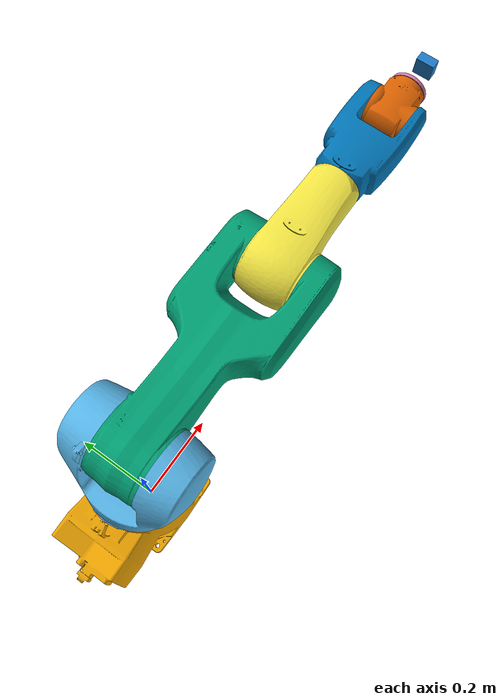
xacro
<?xml version="1.0"?>
<robot name="kr6_d405_workcell" xmlns:xacro="http://www.ros.org/wiki/xacro">
  <xacro:include filename="$(find kuka_kr6_support)/urdf/kr6r900_2_macro.xacro"/>
  <xacro:kuka_kr6r900_2 prefix=""/>

  <material name="d405_blue">
    <color rgba="0.12 0.48 0.78 1.0"/>
  </material>

  <joint name="d405_joint" type="fixed">
    <parent link="tool0"/>
    <child link="d405_link"/>
    <origin xyz="0 0 0.06" rpy="0 0 0"/>
  </joint>
  <link name="d405_link">
    <visual>
      <geometry><box size="0.042 0.042 0.023"/></geometry>
      <material name="d405_blue"/>
    </visual>
    <collision>
      <geometry><box size="0.042 0.042 0.023"/></geometry>
    </collision>
    <inertial>
      <mass value="0.075"/>
      <inertia ixx="0.00002" ixy="0" ixz="0" iyy="0.00002" iyz="0" izz="0.00002"/>
    </inertial>
  </link>

  <link name="d405_color_optical_frame"/>
  <joint name="d405_optical_joint" type="fixed">
    <parent link="d405_link"/>
    <child link="d405_color_optical_frame"/>
    <origin xyz="0 0 0.02" rpy="-1.5708 0 -1.5708"/>
  </joint>

  <ros2_control name="GazeboSystem" type="system">
    <hardware>
      <plugin>gazebo_ros2_control/GazeboSystem</plugin>
    </hardware>
    <joint name="joint_a1">
      <command_interface name="position"/>
      <state_interface name="position"/>
      <state_interface name="velocity"/>
    </joint>
    <joint name="joint_a2">
      <command_interface name="position"/>
      <state_interface name="position"/>
      <state_interface name="velocity"/>
    </joint>
    <joint name="joint_a3">
      <command_interface name="position"/>
      <state_interface name="position"/>
      <state_interface name="velocity"/>
    </joint>
    <joint name="joint_a4">
      <command_interface name="position"/>
      <state_interface name="position"/>
      <state_interface name="velocity"/>
    </joint>
    <joint name="joint_a5">
      <command_interface name="position"/>
      <state_interface name="position"/>
      <state_interface name="velocity"/>
    </joint>
    <joint name="joint_a6">
      <command_interface name="position"/>
      <state_interface name="position"/>
      <state_interface name="velocity"/>
    </joint>
  </ros2_control>

  <gazebo>
    <plugin name="gazebo_ros2_control" filename="libgazebo_ros2_control.so">
      <parameters>$(find designgrounded_ros2)/config/controllers.yaml</parameters>
    </plugin>
  </gazebo>

  <gazebo reference="d405_link">
    <sensor name="d405_depth_camera" type="depth">
      <always_on>true</always_on>
      <update_rate>30</update_rate>
      <visualize>false</visualize>
      <camera name="d405">
        <horizontal_fov>1.5184</horizontal_fov>
        <image>
          <width>1280</width>
          <height>720</height>
          <format>R8G8B8</format>
        </image>
        <clip>
          <near>0.07</near>
          <far>0.50</far>
        </clip>
        <noise>
          <type>gaussian</type>
          <mean>0.0</mean>
          <stddev>0.002</stddev>
        </noise>
      </camera>
      <plugin name="d405_camera_controller" filename="libgazebo_ros_camera.so">
        <ros>
          <namespace>/d405</namespace>
          <remapping>image_raw:=color/image_raw</remapping>
          <remapping>camera_info:=color/camera_info</remapping>
          <remapping>depth/image_raw:=depth/image_raw</remapping>
          <remapping>depth/camera_info:=depth/camera_info</remapping>
          <remapping>points:=depth/points</remapping>
        </ros>
        <camera_name>d405</camera_name>
        <frame_name>d405_color_optical_frame</frame_name>
        <hack_baseline>0.009</hack_baseline>
      </plugin>
    </sensor>
  </gazebo>
</robot>

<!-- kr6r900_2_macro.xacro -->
<robot xmlns:xacro="http://wiki.ros.org/xacro">

  <xacro:macro name="kuka_kr6r900_2" params="prefix">
    <xacro:include filename="$(find kuka_resources)/urdf/common_materials.xacro"/>
    <link name="${prefix}base_link">
      <visual>
        <origin xyz="0 0 0" rpy="0 0 0"/>
        <geometry>
          <mesh filename="package://kuka_kr10_support/meshes/kr10r900_2/visual/base_link.stl" />
        </geometry>
        <xacro:material_kuka_ral_gray_aluminium />
      </visual>
      <collision>
        <origin xyz="0 0 0" rpy="0 0 0"/>
        <geometry>
          <mesh filename="package://kuka_kr10_support/meshes/kr10r900_2/collision/base_link.stl" />
        </geometry>
      </collision>
    </link>
    <link name="${prefix}link_1">
      <visual>
        <origin xyz="0 0 0" rpy="0 0 0"/>
        <geometry>
          <mesh filename="package://kuka_kr10_support/meshes/kr10r900_2/visual/link_1.stl" />
        </geometry>
        <xacro:material_kuka_ral_traffic_white />
      </visual>
      <collision>
        <origin xyz="0 0 0" rpy="0 0 0"/>
        <geometry>
          <mesh filename="package://kuka_kr10_support/meshes/kr10r900_2/collision/link_1.stl" />
        </geometry>
      </collision>
    </link>
    <link name="${prefix}link_2">
      <visual>
        <origin xyz="0 0 0" rpy="0 0 0"/>
        <geometry>
          <mesh filename="package://kuka_kr10_support/meshes/kr10r900_2/visual/link_2.stl"/>
        </geometry>
        <xacro:material_kuka_ral_traffic_white />
      </visual>
      <collision>
        <origin xyz="0 0 0" rpy="0 0 0"/>
        <geometry>
          <mesh filename="package://kuka_kr10_support/meshes/kr10r900_2/collision/link_2.stl" />
        </geometry>
      </collision>
    </link>
    <link name="${prefix}link_3">
      <visual>
        <origin xyz="0 0 0" rpy="0 0 0"/>
        <geometry>
          <mesh filename="package://kuka_kr10_support/meshes/kr10r900_2/visual/link_3.stl" />
        </geometry>
        <xacro:material_kuka_ral_traffic_white />
      </visual>
      <collision>
        <origin xyz="0 0 0" rpy="0 0 0"/>
        <geometry>
          <mesh filename="package://kuka_kr10_support/meshes/kr10r900_2/collision/link_3.stl" />
        </geometry>
      </collision>
    </link>
    <link name="${prefix}link_4">
      <visual>
        <origin xyz="0 0 0" rpy="0 0 0"/>
        <geometry>
          <mesh filename="package://kuka_kr10_support/meshes/kr10r900_2/visual/link_4.stl" />
        </geometry>
        <xacro:material_kuka_ral_traffic_white />
      </visual>
      <collision>
        <origin xyz="0 0 0" rpy="0 0 0"/>
        <geometry>
          <mesh filename="package://kuka_kr10_support/meshes/kr10r900_2/collision/link_4.stl" />
        </geometry>
      </collision>
    </link>
    <link name="${prefix}link_5">
      <visual>
        <origin xyz="0 0 0" rpy="0 0 0"/>
        <geometry>
          <mesh filename="package://kuka_kr10_support/meshes/kr10r900_2/visual/link_5.stl" />
        </geometry>
        <xacro:material_kuka_ral_traffic_white />
      </visual>
      <collision>
        <origin xyz="0 0 0" rpy="0 0 0"/>
        <geometry>
          <mesh filename="package://kuka_kr10_support/meshes/kr10r900_2/collision/link_5.stl" />
        </geometry>
      </collision>
    </link>
    <link name="${prefix}link_6">
      <visual>
        <origin xyz="0 0 0" rpy="0 0 0"/>
        <geometry>
          <mesh filename="package://kuka_kr10_support/meshes/kr10r900_2/visual/link_6.stl" />
        </geometry>
        <xacro:material_kuka_black />
      </visual>
      <collision>
        <origin xyz="0 0 0" rpy="0 0 0"/>
        <geometry>
          <mesh filename="package://kuka_kr10_support/meshes/kr10r900_2/collision/link_6.stl" />
        </geometry>
      </collision>
    </link>

    <joint name="${prefix}joint_a1" type="revolute">
      <origin xyz="0 0 0.400" rpy="0 0 0"/>
      <parent link="${prefix}base_link"/>
      <child link="${prefix}link_1"/>
      <axis xyz="0 0 -1"/>
      <limit effort="150" lower="${radians(-170)}" upper="${radians(170)}" velocity="${radians(360)}"/>
    </joint>
    <joint name="${prefix}joint_a2" type="revolute">
      <origin xyz="0.025 0 0" rpy="0 0 0"/>
      <parent link="${prefix}link_1"/>
      <child link="${prefix}link_2"/>
      <axis xyz="0 1 0"/>
      <limit effort="150" lower="${radians(-190)}" upper="${radians(45)}" velocity="${radians(300)}"/>
    </joint>
    <joint name="${prefix}joint_a3" type="revolute">
      <origin xyz="0.455 0 0" rpy="0 0 0"/>
      <parent link="${prefix}link_2"/>
      <child link="${prefix}link_3"/>
      <axis xyz="0 1 0"/>
      <limit effort="120" lower="${radians(-120)}" upper="${radians(156)}" velocity="${radians(360)}"/>
    </joint>
    <joint name="${prefix}joint_a4" type="revolute">
      <origin xyz="0 0 0.025" rpy="0 0 0"/>
      <parent link="${prefix}link_3"/>
      <child link="${prefix}link_4"/>
      <axis xyz="-1 0 0"/>
      <limit effort="60" lower="${radians(-185)}" upper="${radians(185)}" velocity="${radians(450)}"/>
    </joint>
    <joint name="${prefix}joint_a5" type="revolute">
      <origin xyz="0.420 0 0" rpy="0 0 0"/>
      <parent link="${prefix}link_4"/>
      <child link="${prefix}link_5"/>
      <axis xyz="0 1 0"/>
      <limit effort="60" lower="${radians(-120)}" upper="${radians(120)}" velocity="${radians(450)}"/>
    </joint>
    <joint name="${prefix}joint_a6" type="revolute">
      <origin xyz="0.090 0 0" rpy="0 0 0"/>
      <parent link="${prefix}link_5"/>
      <child link="${prefix}link_6"/>
      <axis xyz="-1 0 0"/>
      <limit effort="30" lower="${radians(-350)}" upper="${radians(350)}" velocity="${radians(540)}"/>
    </joint>

    <!-- ROS-Industrial 'base' frame: base_link to KUKA $ROBROOT coordinate system transform -->
    <link name="${prefix}base" />
    <joint name="${prefix}base_link-base" type="fixed">
      <origin xyz="0 0 0" rpy="0 0 0"/>
      <parent link="${prefix}base_link"/>
      <child link="${prefix}base"/>
    </joint>

    <!-- ROS-Industrial 'flange' frame: attachment point for EEF models -->
    <link name="${prefix}flange" />
    <joint name="${prefix}joint_6-flange" type="fixed">
      <origin xyz="0 0 0" rpy="0 0 0" />
      <parent link="${prefix}link_6" />
      <child link="${prefix}flange" />
    </joint>

    <!-- ROS-Industrial 'tool0' frame: all-zeros tool frame -->
    <!-- This frame corresponds to the $FLANGE coordinate system in KUKA KRC controllers. -->
    <link name="${prefix}tool0"/>
    <joint name="${prefix}flange-tool0" type="fixed">
      <parent link="${prefix}flange"/>
      <child link="${prefix}tool0"/>
      <origin xyz="0 0 0" rpy="0 ${radians(90)} 0"/>
    </joint>
  </xacro:macro>
</robot>
